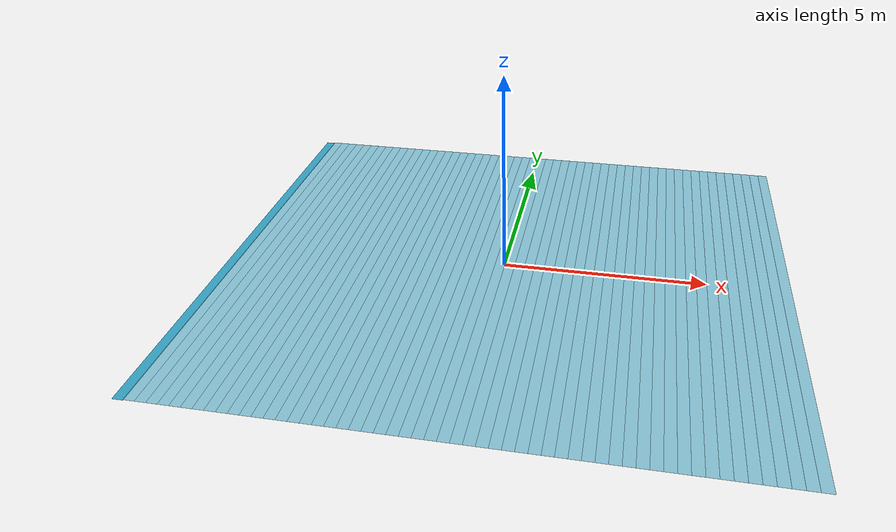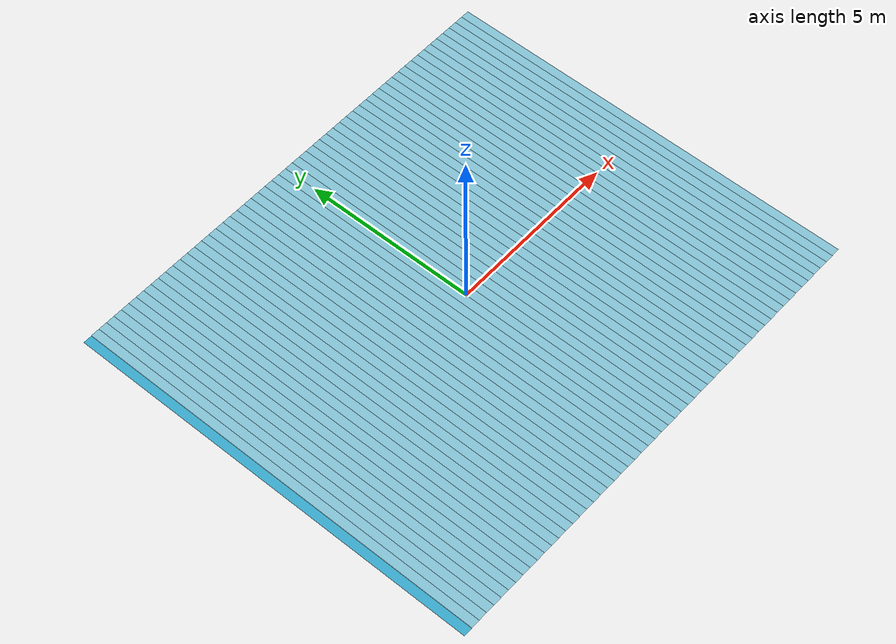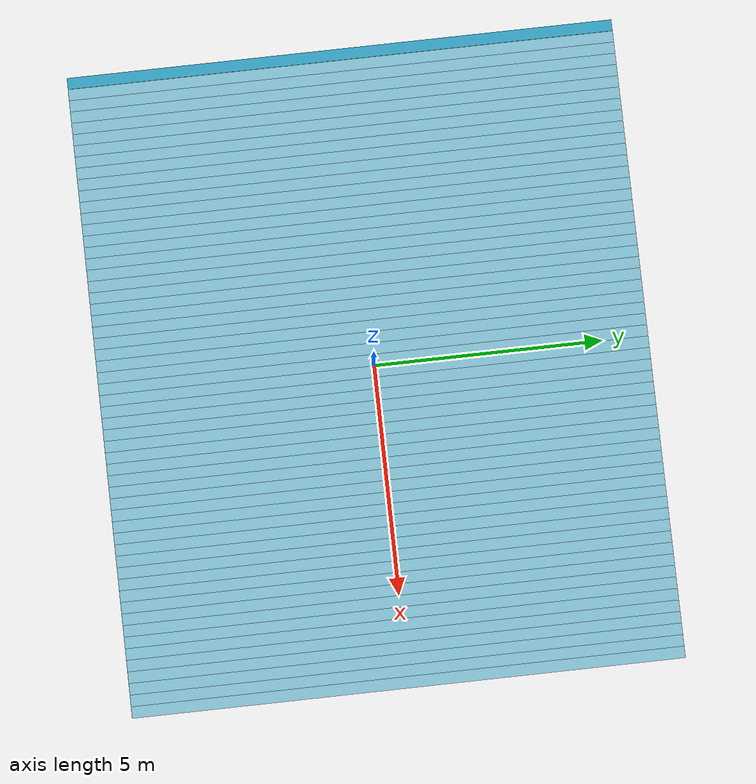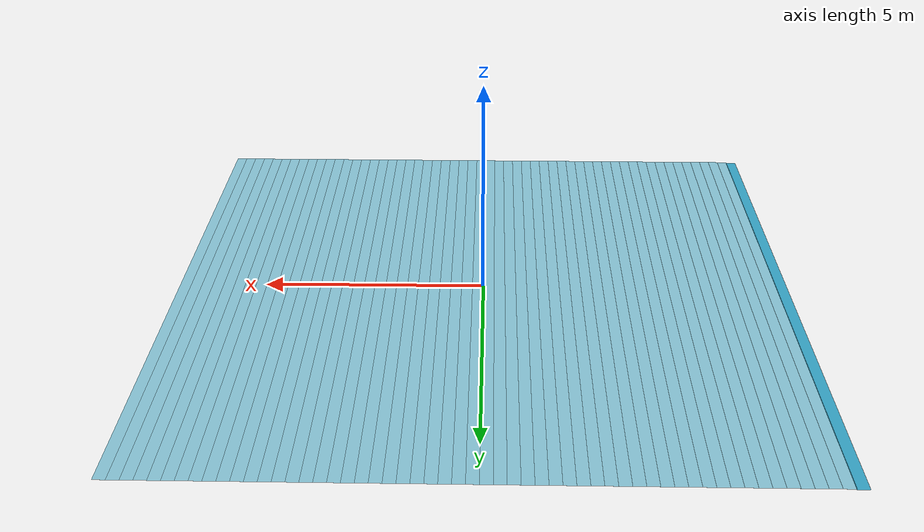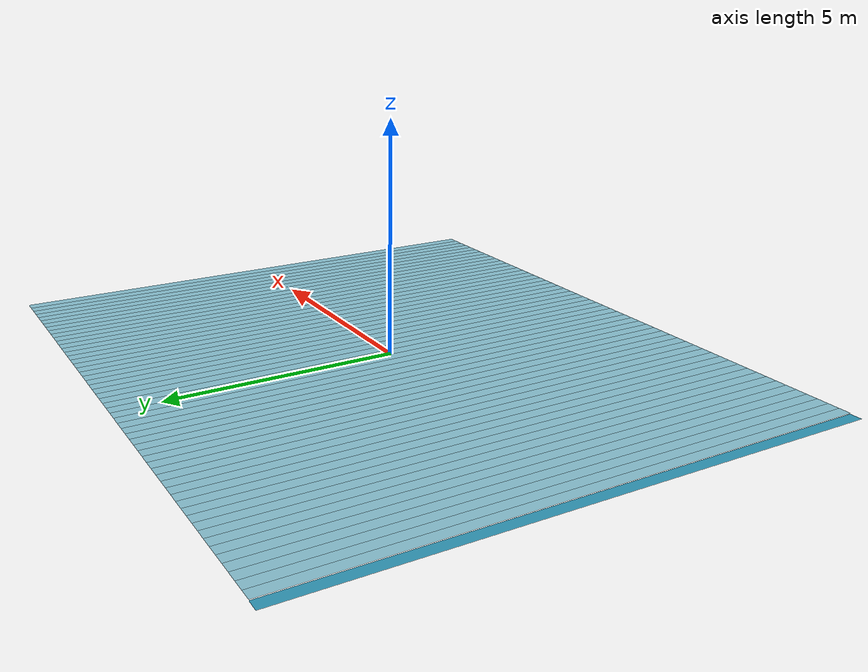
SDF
<sdf version="1.10">
 <world name="CompetitionWorld2025">
  <physics name="pool_physics" type="ignored">
   <max_step_size>0.003</max_step_size>
   <real_time_factor>1</real_time_factor>
  </physics>
  <spherical_coordinates>
   <surface_model>EARTH_WGS84</surface_model>
   <latitude_deg>31.312</latitude_deg>
   <longitude_deg>30.067222</longitude_deg>
   <elevation>0</elevation>
   <heading_deg>0</heading_deg>
  </spherical_coordinates>
  <plugin filename="gz-sim-physics-system" name="gz::sim::systems::Physics"/>
  <plugin filename="gz-sim-sensors-system" name="gz::sim::systems::Sensors">
   <render_engine>ogre2</render_engine>
  </plugin>
  <plugin filename="gz-sim-imu-system" name="gz::sim::systems::Imu"/>
  <plugin filename="gz-sim-user-commands-system" name="gz::sim::systems::UserCommands"/>
  <plugin filename="gz-sim-scene-broadcaster-system" name="gz::sim::systems::SceneBroadcaster"/>
  <plugin filename="gz-sim-buoyancy-system" name="gz::sim::systems::Buoyancy">
   <graded_buoyancy>
    <default_density>998</default_density>
    <density_change><above_depth>0</above_depth><density>1.225</density></density_change>
   </graded_buoyancy>
  </plugin>
  <plugin filename="libmako-pool-waves.so" name="mako::ResetBuoyancy"/>
  <scene>
   <ambient>0.45 0.45 0.48 1</ambient>
   <background>0.8 0.88 0.94 1</background>
   <shadows>true</shadows>
  </scene>
  <light name="pool_daylight" type="directional">
   <pose>0 0 6 0 0 0</pose>
   <direction>-0.3 0.2 -1</direction>
   <diffuse>0.85 0.85 0.85 1</diffuse>
   <specular>0.35 0.35 0.35 1</specular>
  </light>
  <light name="pool_fill" type="directional">
   <pose>0 0 6 0 0 0</pose>
   <direction>0.5 -0.4 -1</direction>
   <diffuse>0.25 0.28 0.3 1</diffuse>
   <specular>0.35 0.35 0.35 1</specular>
   <cast_shadows>false</cast_shadows>
  </light>
  <light name="pool_underwater_fill_west" type="point">
   <pose>-4 -3 -1.2 0 0 0</pose>
   <diffuse>0.35 0.4 0.45 1</diffuse>
   <specular>0.15 0.15 0.15 1</specular>
   <cast_shadows>false</cast_shadows>
   <attenuation>
    <range>16</range>
    <constant>1</constant>
    <linear>.05</linear>
    <quadratic>.02</quadratic>
   </attenuation>
  </light>
  <light name="pool_underwater_fill_east" type="point">
   <pose>4 3 -1.2 0 0 0</pose>
   <diffuse>0.35 0.4 0.45 1</diffuse>
   <specular>0.15 0.15 0.15 1</specular>
   <cast_shadows>false</cast_shadows>
   <attenuation>
    <range>16</range>
    <constant>1</constant>
    <linear>.05</linear>
    <quadratic>.02</quadratic>
   </attenuation>
  </light>
  <plugin filename="libmako-pool-waves.so" name="mako::PoolWaves">
   <amplitude>.018</amplitude>
   <wavelength>12</wavelength>
   <robot_model>mako</robot_model>
  </plugin>
  <model name="pool_ripple_00">
   <static>true</static>
   <pose>-6.875 0 0 0 0 0</pose>
   <link name="surface">
    <visual name="water">
     <cast_shadows>false</cast_shadows>
     <transparency>0.45</transparency>
     <geometry><plane><normal>0 0 1</normal><size>.251 12</size></plane></geometry>
     <material>
      <ambient>.12 .42 .52 1</ambient>
      <diffuse>.2 .62 .75 1</diffuse>
      <specular>.9 .95 1 1</specular>
      <pbr><metal><metalness>0</metalness><roughness>.16</roughness></metal></pbr>
     </material>
    </visual>
   </link>
  </model>
  <model name="pool_ripple_01">
   <static>true</static>
   <pose>-6.625 0 0 0 0 0</pose>
   <link name="surface">
    <visual name="water">
     <cast_shadows>false</cast_shadows>
     <transparency>0.45</transparency>
     <geometry><plane><normal>0 0 1</normal><size>.251 12</size></plane></geometry>
     <material>
      <ambient>.12 .42 .52 1</ambient>
      <diffuse>.2 .62 .75 1</diffuse>
      <specular>.9 .95 1 1</specular>
      <pbr><metal><metalness>0</metalness><roughness>.16</roughness></metal></pbr>
     </material>
    </visual>
   </link>
  </model>
  <model name="pool_ripple_02">
   <static>true</static>
   <pose>-6.375 0 0 0 0 0</pose>
   <link name="surface">
    <visual name="water">
     <cast_shadows>false</cast_shadows>
     <transparency>0.45</transparency>
     <geometry><plane><normal>0 0 1</normal><size>.251 12</size></plane></geometry>
     <material>
      <ambient>.12 .42 .52 1</ambient>
      <diffuse>.2 .62 .75 1</diffuse>
      <specular>.9 .95 1 1</specular>
      <pbr><metal><metalness>0</metalness><roughness>.16</roughness></metal></pbr>
     </material>
    </visual>
   </link>
  </model>
  <model name="pool_ripple_03">
   <static>true</static>
   <pose>-6.125 0 0 0 0 0</pose>
   <link name="surface">
    <visual name="water">
     <cast_shadows>false</cast_shadows>
     <transparency>0.45</transparency>
     <geometry><plane><normal>0 0 1</normal><size>.251 12</size></plane></geometry>
     <material>
      <ambient>.12 .42 .52 1</ambient>
      <diffuse>.2 .62 .75 1</diffuse>
      <specular>.9 .95 1 1</specular>
      <pbr><metal><metalness>0</metalness><roughness>.16</roughness></metal></pbr>
     </material>
    </visual>
   </link>
  </model>
  <model name="pool_ripple_04">
   <static>true</static>
   <pose>-5.875 0 0 0 0 0</pose>
   <link name="surface">
    <visual name="water">
     <cast_shadows>false</cast_shadows>
     <transparency>0.45</transparency>
     <geometry><plane><normal>0 0 1</normal><size>.251 12</size></plane></geometry>
     <material>
      <ambient>.12 .42 .52 1</ambient>
      <diffuse>.2 .62 .75 1</diffuse>
      <specular>.9 .95 1 1</specular>
      <pbr><metal><metalness>0</metalness><roughness>.16</roughness></metal></pbr>
     </material>
    </visual>
   </link>
  </model>
  <model name="pool_ripple_05">
   <static>true</static>
   <pose>-5.625 0 0 0 0 0</pose>
   <link name="surface">
    <visual name="water">
     <cast_shadows>false</cast_shadows>
     <transparency>0.45</transparency>
     <geometry><plane><normal>0 0 1</normal><size>.251 12</size></plane></geometry>
     <material>
      <ambient>.12 .42 .52 1</ambient>
      <diffuse>.2 .62 .75 1</diffuse>
      <specular>.9 .95 1 1</specular>
      <pbr><metal><metalness>0</metalness><roughness>.16</roughness></metal></pbr>
     </material>
    </visual>
   </link>
  </model>
  <model name="pool_ripple_06">
   <static>true</static>
   <pose>-5.375 0 0 0 0 0</pose>
   <link name="surface">
    <visual name="water">
     <cast_shadows>false</cast_shadows>
     <transparency>0.45</transparency>
     <geometry><plane><normal>0 0 1</normal><size>.251 12</size></plane></geometry>
     <material>
      <ambient>.12 .42 .52 1</ambient>
      <diffuse>.2 .62 .75 1</diffuse>
      <specular>.9 .95 1 1</specular>
      <pbr><metal><metalness>0</metalness><roughness>.16</roughness></metal></pbr>
     </material>
    </visual>
   </link>
  </model>
  <model name="pool_ripple_07">
   <static>true</static>
   <pose>-5.125 0 0 0 0 0</pose>
   <link name="surface">
    <visual name="water">
     <cast_shadows>false</cast_shadows>
     <transparency>0.45</transparency>
     <geometry><plane><normal>0 0 1</normal><size>.251 12</size></plane></geometry>
     <material>
      <ambient>.12 .42 .52 1</ambient>
      <diffuse>.2 .62 .75 1</diffuse>
      <specular>.9 .95 1 1</specular>
      <pbr><metal><metalness>0</metalness><roughness>.16</roughness></metal></pbr>
     </material>
    </visual>
   </link>
  </model>
  <model name="pool_ripple_08">
   <static>true</static>
   <pose>-4.875 0 0 0 0 0</pose>
   <link name="surface">
    <visual name="water">
     <cast_shadows>false</cast_shadows>
     <transparency>0.45</transparency>
     <geometry><plane><normal>0 0 1</normal><size>.251 12</size></plane></geometry>
     <material>
      <ambient>.12 .42 .52 1</ambient>
      <diffuse>.2 .62 .75 1</diffuse>
      <specular>.9 .95 1 1</specular>
      <pbr><metal><metalness>0</metalness><roughness>.16</roughness></metal></pbr>
     </material>
    </visual>
   </link>
  </model>
  <model name="pool_ripple_09">
   <static>true</static>
   <pose>-4.625 0 0 0 0 0</pose>
   <link name="surface">
    <visual name="water">
     <cast_shadows>false</cast_shadows>
     <transparency>0.45</transparency>
     <geometry><plane><normal>0 0 1</normal><size>.251 12</size></plane></geometry>
     <material>
      <ambient>.12 .42 .52 1</ambient>
      <diffuse>.2 .62 .75 1</diffuse>
      <specular>.9 .95 1 1</specular>
      <pbr><metal><metalness>0</metalness><roughness>.16</roughness></metal></pbr>
     </material>
    </visual>
   </link>
  </model>
  <model name="pool_ripple_10">
   <static>true</static>
   <pose>-4.375 0 0 0 0 0</pose>
   <link name="surface">
    <visual name="water">
     <cast_shadows>false</cast_shadows>
     <transparency>0.45</transparency>
     <geometry><plane><normal>0 0 1</normal><size>.251 12</size></plane></geometry>
     <material>
      <ambient>.12 .42 .52 1</ambient>
      <diffuse>.2 .62 .75 1</diffuse>
      <specular>.9 .95 1 1</specular>
      <pbr><metal><metalness>0</metalness><roughness>.16</roughness></metal></pbr>
     </material>
    </visual>
   </link>
  </model>
  <model name="pool_ripple_11">
   <static>true</static>
   <pose>-4.125 0 0 0 0 0</pose>
   <link name="surface">
    <visual name="water">
     <cast_shadows>false</cast_shadows>
     <transparency>0.45</transparency>
     <geometry><plane><normal>0 0 1</normal><size>.251 12</size></plane></geometry>
     <material>
      <ambient>.12 .42 .52 1</ambient>
      <diffuse>.2 .62 .75 1</diffuse>
      <specular>.9 .95 1 1</specular>
      <pbr><metal><metalness>0</metalness><roughness>.16</roughness></metal></pbr>
     </material>
    </visual>
   </link>
  </model>
  <model name="pool_ripple_12">
   <static>true</static>
   <pose>-3.875 0 0 0 0 0</pose>
   <link name="surface">
    <visual name="water">
     <cast_shadows>false</cast_shadows>
     <transparency>0.45</transparency>
     <geometry><plane><normal>0 0 1</normal><size>.251 12</size></plane></geometry>
     <material>
      <ambient>.12 .42 .52 1</ambient>
      <diffuse>.2 .62 .75 1</diffuse>
      <specular>.9 .95 1 1</specular>
      <pbr><metal><metalness>0</metalness><roughness>.16</roughness></metal></pbr>
     </material>
    </visual>
   </link>
  </model>
  <model name="pool_ripple_13">
   <static>true</static>
   <pose>-3.625 0 0 0 0 0</pose>
   <link name="surface">
    <visual name="water">
     <cast_shadows>false</cast_shadows>
     <transparency>0.45</transparency>
     <geometry><plane><normal>0 0 1</normal><size>.251 12</size></plane></geometry>
     <material>
      <ambient>.12 .42 .52 1</ambient>
      <diffuse>.2 .62 .75 1</diffuse>
      <specular>.9 .95 1 1</specular>
      <pbr><metal><metalness>0</metalness><roughness>.16</roughness></metal></pbr>
     </material>
    </visual>
   </link>
  </model>
  <model name="pool_ripple_14">
   <static>true</static>
   <pose>-3.375 0 0 0 0 0</pose>
   <link name="surface">
    <visual name="water">
     <cast_shadows>false</cast_shadows>
     <transparency>0.45</transparency>
     <geometry><plane><normal>0 0 1</normal><size>.251 12</size></plane></geometry>
     <material>
      <ambient>.12 .42 .52 1</ambient>
      <diffuse>.2 .62 .75 1</diffuse>
      <specular>.9 .95 1 1</specular>
      <pbr><metal><metalness>0</metalness><roughness>.16</roughness></metal></pbr>
     </material>
    </visual>
   </link>
  </model>
  <model name="pool_ripple_15">
   <static>true</static>
   <pose>-3.125 0 0 0 0 0</pose>
   <link name="surface">
    <visual name="water">
     <cast_shadows>false</cast_shadows>
     <transparency>0.45</transparency>
     <geometry><plane><normal>0 0 1</normal><size>.251 12</size></plane></geometry>
     <material>
      <ambient>.12 .42 .52 1</ambient>
      <diffuse>.2 .62 .75 1</diffuse>
      <specular>.9 .95 1 1</specular>
      <pbr><metal><metalness>0</metalness><roughness>.16</roughness></metal></pbr>
     </material>
    </visual>
   </link>
  </model>
  <model name="pool_ripple_16">
   <static>true</static>
   <pose>-2.875 0 0 0 0 0</pose>
   <link name="surface">
    <visual name="water">
     <cast_shadows>false</cast_shadows>
     <transparency>0.45</transparency>
     <geometry><plane><normal>0 0 1</normal><size>.251 12</size></plane></geometry>
     <material>
      <ambient>.12 .42 .52 1</ambient>
      <diffuse>.2 .62 .75 1</diffuse>
      <specular>.9 .95 1 1</specular>
      <pbr><metal><metalness>0</metalness><roughness>.16</roughness></metal></pbr>
     </material>
    </visual>
   </link>
  </model>
  <model name="pool_ripple_17">
   <static>true</static>
   <pose>-2.625 0 0 0 0 0</pose>
   <link name="surface">
    <visual name="water">
     <cast_shadows>false</cast_shadows>
     <transparency>0.45</transparency>
     <geometry><plane><normal>0 0 1</normal><size>.251 12</size></plane></geometry>
     <material>
      <ambient>.12 .42 .52 1</ambient>
      <diffuse>.2 .62 .75 1</diffuse>
      <specular>.9 .95 1 1</specular>
      <pbr><metal><metalness>0</metalness><roughness>.16</roughness></metal></pbr>
     </material>
    </visual>
   </link>
  </model>
  <model name="pool_ripple_18">
   <static>true</static>
   <pose>-2.375 0 0 0 0 0</pose>
   <link name="surface">
    <visual name="water">
     <cast_shadows>false</cast_shadows>
     <transparency>0.45</transparency>
     <geometry><plane><normal>0 0 1</normal><size>.251 12</size></plane></geometry>
     <material>
      <ambient>.12 .42 .52 1</ambient>
      <diffuse>.2 .62 .75 1</diffuse>
      <specular>.9 .95 1 1</specular>
      <pbr><metal><metalness>0</metalness><roughness>.16</roughness></metal></pbr>
     </material>
    </visual>
   </link>
  </model>
  <model name="pool_ripple_19">
   <static>true</static>
   <pose>-2.125 0 0 0 0 0</pose>
   <link name="surface">
    <visual name="water">
     <cast_shadows>false</cast_shadows>
     <transparency>0.45</transparency>
     <geometry><plane><normal>0 0 1</normal><size>.251 12</size></plane></geometry>
     <material>
      <ambient>.12 .42 .52 1</ambient>
      <diffuse>.2 .62 .75 1</diffuse>
      <specular>.9 .95 1 1</specular>
      <pbr><metal><metalness>0</metalness><roughness>.16</roughness></metal></pbr>
     </material>
    </visual>
   </link>
  </model>
  <model name="pool_ripple_20">
   <static>true</static>
   <pose>-1.875 0 0 0 0 0</pose>
   <link name="surface">
    <visual name="water">
     <cast_shadows>false</cast_shadows>
     <transparency>0.45</transparency>
     <geometry><plane><normal>0 0 1</normal><size>.251 12</size></plane></geometry>
     <material>
      <ambient>.12 .42 .52 1</ambient>
      <diffuse>.2 .62 .75 1</diffuse>
      <specular>.9 .95 1 1</specular>
      <pbr><metal><metalness>0</metalness><roughness>.16</roughness></metal></pbr>
     </material>
    </visual>
   </link>
  </model>
  <model name="pool_ripple_21">
   <static>true</static>
   <pose>-1.625 0 0 0 0 0</pose>
   <link name="surface">
    <visual name="water">
     <cast_shadows>false</cast_shadows>
     <transparency>0.45</transparency>
     <geometry><plane><normal>0 0 1</normal><size>.251 12</size></plane></geometry>
     <material>
      <ambient>.12 .42 .52 1</ambient>
      <diffuse>.2 .62 .75 1</diffuse>
      <specular>.9 .95 1 1</specular>
      <pbr><metal><metalness>0</metalness><roughness>.16</roughness></metal></pbr>
     </material>
    </visual>
   </link>
  </model>
  <model name="pool_ripple_22">
   <static>true</static>
   <pose>-1.375 0 0 0 0 0</pose>
   <link name="surface">
    <visual name="water">
     <cast_shadows>false</cast_shadows>
     <transparency>0.45</transparency>
     <geometry><plane><normal>0 0 1</normal><size>.251 12</size></plane></geometry>
     <material>
      <ambient>.12 .42 .52 1</ambient>
      <diffuse>.2 .62 .75 1</diffuse>
      <specular>.9 .95 1 1</specular>
      <pbr><metal><metalness>0</metalness><roughness>.16</roughness></metal></pbr>
     </material>
    </visual>
   </link>
  </model>
  <model name="pool_ripple_23">
   <static>true</static>
   <pose>-1.125 0 0 0 0 0</pose>
   <link name="surface">
    <visual name="water">
     <cast_shadows>false</cast_shadows>
     <transparency>0.45</transparency>
     <geometry><plane><normal>0 0 1</normal><size>.251 12</size></plane></geometry>
     <material>
      <ambient>.12 .42 .52 1</ambient>
      <diffuse>.2 .62 .75 1</diffuse>
      <specular>.9 .95 1 1</specular>
      <pbr><metal><metalness>0</metalness><roughness>.16</roughness></metal></pbr>
     </material>
    </visual>
   </link>
  </model>
  <model name="pool_ripple_24">
   <static>true</static>
   <pose>-0.875 0 0 0 0 0</pose>
   <link name="surface">
    <visual name="water">
     <cast_shadows>false</cast_shadows>
     <transparency>0.45</transparency>
     <geometry><plane><normal>0 0 1</normal><size>.251 12</size></plane></geometry>
     <material>
      <ambient>.12 .42 .52 1</ambient>
      <diffuse>.2 .62 .75 1</diffuse>
      <specular>.9 .95 1 1</specular>
      <pbr><metal><metalness>0</metalness><roughness>.16</roughness></metal></pbr>
     </material>
    </visual>
   </link>
  </model>
  <model name="pool_ripple_25">
   <static>true</static>
   <pose>-0.625 0 0 0 0 0</pose>
   <link name="surface">
    <visual name="water">
     <cast_shadows>false</cast_shadows>
     <transparency>0.45</transparency>
     <geometry><plane><normal>0 0 1</normal><size>.251 12</size></plane></geometry>
     <material>
      <ambient>.12 .42 .52 1</ambient>
      <diffuse>.2 .62 .75 1</diffuse>
      <specular>.9 .95 1 1</specular>
      <pbr><metal><metalness>0</metalness><roughness>.16</roughness></metal></pbr>
     </material>
    </visual>
   </link>
  </model>
  <model name="pool_ripple_26">
   <static>true</static>
   <pose>-0.375 0 0 0 0 0</pose>
   <link name="surface">
    <visual name="water">
     <cast_shadows>false</cast_shadows>
     <transparency>0.45</transparency>
     <geometry><plane><normal>0 0 1</normal><size>.251 12</size></plane></geometry>
     <material>
      <ambient>.12 .42 .52 1</ambient>
      <diffuse>.2 .62 .75 1</diffuse>
      <specular>.9 .95 1 1</specular>
      <pbr><metal><metalness>0</metalness><roughness>.16</roughness></metal></pbr>
     </material>
    </visual>
   </link>
  </model>
  <model name="pool_ripple_27">
   <static>true</static>
   <pose>-0.125 0 0 0 0 0</pose>
   <link name="surface">
    <visual name="water">
     <cast_shadows>false</cast_shadows>
     <transparency>0.45</transparency>
     <geometry><plane><normal>0 0 1</normal><size>.251 12</size></plane></geometry>
     <material>
      <ambient>.12 .42 .52 1</ambient>
      <diffuse>.2 .62 .75 1</diffuse>
      <specular>.9 .95 1 1</specular>
      <pbr><metal><metalness>0</metalness><roughness>.16</roughness></metal></pbr>
     </material>
    </visual>
   </link>
  </model>
  <model name="pool_ripple_28">
   <static>true</static>
   <pose>0.125 0 0 0 0 0</pose>
   <link name="surface">
    <visual name="water">
     <cast_shadows>false</cast_shadows>
     <transparency>0.45</transparency>
     <geometry><plane><normal>0 0 1</normal><size>.251 12</size></plane></geometry>
     <material>
      <ambient>.12 .42 .52 1</ambient>
      <diffuse>.2 .62 .75 1</diffuse>
      <specular>.9 .95 1 1</specular>
      <pbr><metal><metalness>0</metalness><roughness>.16</roughness></metal></pbr>
     </material>
    </visual>
   </link>
  </model>
  <model name="pool_ripple_29">
   <static>true</static>
   <pose>0.375 0 0 0 0 0</pose>
   <link name="surface">
    <visual name="water">
     <cast_shadows>false</cast_shadows>
     <transparency>0.45</transparency>
     <geometry><plane><normal>0 0 1</normal><size>.251 12</size></plane></geometry>
     <material>
      <ambient>.12 .42 .52 1</ambient>
      <diffuse>.2 .62 .75 1</diffuse>
      <specular>.9 .95 1 1</specular>
      <pbr><metal><metalness>0</metalness><roughness>.16</roughness></metal></pbr>
     </material>
    </visual>
   </link>
  </model>
  <model name="pool_ripple_30">
   <static>true</static>
   <pose>0.625 0 0 0 0 0</pose>
   <link name="surface">
    <visual name="water">
     <cast_shadows>false</cast_shadows>
     <transparency>0.45</transparency>
     <geometry><plane><normal>0 0 1</normal><size>.251 12</size></plane></geometry>
     <material>
      <ambient>.12 .42 .52 1</ambient>
      <diffuse>.2 .62 .75 1</diffuse>
      <specular>.9 .95 1 1</specular>
      <pbr><metal><metalness>0</metalness><roughness>.16</roughness></metal></pbr>
     </material>
    </visual>
   </link>
  </model>
  <model name="pool_ripple_31">
   <static>true</static>
   <pose>0.875 0 0 0 0 0</pose>
   <link name="surface">
    <visual name="water">
     <cast_shadows>false</cast_shadows>
     <transparency>0.45</transparency>
     <geometry><plane><normal>0 0 1</normal><size>.251 12</size></plane></geometry>
     <material>
      <ambient>.12 .42 .52 1</ambient>
      <diffuse>.2 .62 .75 1</diffuse>
      <specular>.9 .95 1 1</specular>
      <pbr><metal><metalness>0</metalness><roughness>.16</roughness></metal></pbr>
     </material>
    </visual>
   </link>
  </model>
  <model name="pool_ripple_32">
   <static>true</static>
   <pose>1.125 0 0 0 0 0</pose>
   <link name="surface">
    <visual name="water">
     <cast_shadows>false</cast_shadows>
     <transparency>0.45</transparency>
     <geometry><plane><normal>0 0 1</normal><size>.251 12</size></plane></geometry>
     <material>
      <ambient>.12 .42 .52 1</ambient>
      <diffuse>.2 .62 .75 1</diffuse>
      <specular>.9 .95 1 1</specular>
      <pbr><metal><metalness>0</metalness><roughness>.16</roughness></metal></pbr>
     </material>
    </visual>
   </link>
  </model>
  <model name="pool_ripple_33">
   <static>true</static>
   <pose>1.375 0 0 0 0 0</pose>
   <link name="surface">
    <visual name="water">
     <cast_shadows>false</cast_shadows>
     <transparency>0.45</transparency>
     <geometry><plane><normal>0 0 1</normal><size>.251 12</size></plane></geometry>
     <material>
      <ambient>.12 .42 .52 1</ambient>
      <diffuse>.2 .62 .75 1</diffuse>
      <specular>.9 .95 1 1</specular>
      <pbr><metal><metalness>0</metalness><roughness>.16</roughness></metal></pbr>
     </material>
    </visual>
   </link>
  </model>
  <model name="pool_ripple_34">
   <static>true</static>
   <pose>1.625 0 0 0 0 0</pose>
   <link name="surface">
    <visual name="water">
     <cast_shadows>false</cast_shadows>
     <transparency>0.45</transparency>
     <geometry><plane><normal>0 0 1</normal><size>.251 12</size></plane></geometry>
     <material>
      <ambient>.12 .42 .52 1</ambient>
      <diffuse>.2 .62 .75 1</diffuse>
      <specular>.9 .95 1 1</specular>
      <pbr><metal><metalness>0</metalness><roughness>.16</roughness></metal></pbr>
     </material>
    </visual>
   </link>
  </model>
  <model name="pool_ripple_35">
   <static>true</static>
   <pose>1.875 0 0 0 0 0</pose>
   <link name="surface">
    <visual name="water">
     <cast_shadows>false</cast_shadows>
     <transparency>0.45</transparency>
     <geometry><plane><normal>0 0 1</normal><size>.251 12</size></plane></geometry>
     <material>
      <ambient>.12 .42 .52 1</ambient>
      <diffuse>.2 .62 .75 1</diffuse>
      <specular>.9 .95 1 1</specular>
      <pbr><metal><metalness>0</metalness><roughness>.16</roughness></metal></pbr>
     </material>
    </visual>
   </link>
  </model>
  <model name="pool_ripple_36">
   <static>true</static>
   <pose>2.125 0 0 0 0 0</pose>
   <link name="surface">
    <visual name="water">
     <cast_shadows>false</cast_shadows>
     <transparency>0.45</transparency>
     <geometry><plane><normal>0 0 1</normal><size>.251 12</size></plane></geometry>
     <material>
      <ambient>.12 .42 .52 1</ambient>
      <diffuse>.2 .62 .75 1</diffuse>
      <specular>.9 .95 1 1</specular>
      <pbr><metal><metalness>0</metalness><roughness>.16</roughness></metal></pbr>
     </material>
    </visual>
   </link>
  </model>
  <model name="pool_ripple_37">
   <static>true</static>
   <pose>2.375 0 0 0 0 0</pose>
   <link name="surface">
    <visual name="water">
     <cast_shadows>false</cast_shadows>
     <transparency>0.45</transparency>
     <geometry><plane><normal>0 0 1</normal><size>.251 12</size></plane></geometry>
     <material>
      <ambient>.12 .42 .52 1</ambient>
      <diffuse>.2 .62 .75 1</diffuse>
      <specular>.9 .95 1 1</specular>
      <pbr><metal><metalness>0</metalness><roughness>.16</roughness></metal></pbr>
     </material>
    </visual>
   </link>
  </model>
  <model name="pool_ripple_38">
   <static>true</static>
   <pose>2.625 0 0 0 0 0</pose>
   <link name="surface">
    <visual name="water">
     <cast_shadows>false</cast_shadows>
     <transparency>0.45</transparency>
     <geometry><plane><normal>0 0 1</normal><size>.251 12</size></plane></geometry>
     <material>
      <ambient>.12 .42 .52 1</ambient>
      <diffuse>.2 .62 .75 1</diffuse>
      <specular>.9 .95 1 1</specular>
      <pbr><metal><metalness>0</metalness><roughness>.16</roughness></metal></pbr>
     </material>
    </visual>
   </link>
  </model>
  <model name="pool_ripple_39">
   <static>true</static>
   <pose>2.875 0 0 0 0 0</pose>
   <link name="surface">
    <visual name="water">
     <cast_shadows>false</cast_shadows>
     <transparency>0.45</transparency>
     <geometry><plane><normal>0 0 1</normal><size>.251 12</size></plane></geometry>
     <material>
      <ambient>.12 .42 .52 1</ambient>
      <diffuse>.2 .62 .75 1</diffuse>
      <specular>.9 .95 1 1</specular>
      <pbr><metal><metalness>0</metalness><roughness>.16</roughness></metal></pbr>
     </material>
    </visual>
   </link>
  </model>
  <model name="pool_ripple_40">
   <static>true</static>
   <pose>3.125 0 0 0 0 0</pose>
   <link name="surface">
    <visual name="water">
     <cast_shadows>false</cast_shadows>
     <transparency>0.45</transparency>
     <geometry><plane><normal>0 0 1</normal><size>.251 12</size></plane></geometry>
     <material>
      <ambient>.12 .42 .52 1</ambient>
      <diffuse>.2 .62 .75 1</diffuse>
      <specular>.9 .95 1 1</specular>
      <pbr><metal><metalness>0</metalness><roughness>.16</roughness></metal></pbr>
     </material>
    </visual>
   </link>
  </model>
  <model name="pool_ripple_41">
   <static>true</static>
   <pose>3.375 0 0 0 0 0</pose>
   <link name="surface">
    <visual name="water">
     <cast_shadows>false</cast_shadows>
     <transparency>0.45</transparency>
     <geometry><plane><normal>0 0 1</normal><size>.251 12</size></plane></geometry>
     <material>
      <ambient>.12 .42 .52 1</ambient>
      <diffuse>.2 .62 .75 1</diffuse>
      <specular>.9 .95 1 1</specular>
      <pbr><metal><metalness>0</metalness><roughness>.16</roughness></metal></pbr>
     </material>
    </visual>
   </link>
  </model>
  <model name="pool_ripple_42">
   <static>true</static>
   <pose>3.625 0 0 0 0 0</pose>
   <link name="surface">
    <visual name="water">
     <cast_shadows>false</cast_shadows>
     <transparency>0.45</transparency>
     <geometry><plane><normal>0 0 1</normal><size>.251 12</size></plane></geometry>
     <material>
      <ambient>.12 .42 .52 1</ambient>
      <diffuse>.2 .62 .75 1</diffuse>
      <specular>.9 .95 1 1</specular>
      <pbr><metal><metalness>0</metalness><roughness>.16</roughness></metal></pbr>
     </material>
    </visual>
   </link>
  </model>
  <model name="pool_ripple_43">
   <static>true</static>
   <pose>3.875 0 0 0 0 0</pose>
   <link name="surface">
    <visual name="water">
     <cast_shadows>false</cast_shadows>
     <transparency>0.45</transparency>
     <geometry><plane><normal>0 0 1</normal><size>.251 12</size></plane></geometry>
     <material>
      <ambient>.12 .42 .52 1</ambient>
      <diffuse>.2 .62 .75 1</diffuse>
      <specular>.9 .95 1 1</specular>
      <pbr><metal><metalness>0</metalness><roughness>.16</roughness></metal></pbr>
     </material>
    </visual>
   </link>
  </model>
  <model name="pool_ripple_44">
   <static>true</static>
   <pose>4.125 0 0 0 0 0</pose>
   <link name="surface">
    <visual name="water">
     <cast_shadows>false</cast_shadows>
     <transparency>0.45</transparency>
     <geometry><plane><normal>0 0 1</normal><size>.251 12</size></plane></geometry>
     <material>
      <ambient>.12 .42 .52 1</ambient>
      <diffuse>.2 .62 .75 1</diffuse>
      <specular>.9 .95 1 1</specular>
      <pbr><metal><metalness>0</metalness><roughness>.16</roughness></metal></pbr>
     </material>
    </visual>
   </link>
  </model>
  <model name="pool_ripple_45">
   <static>true</static>
   <pose>4.375 0 0 0 0 0</pose>
   <link name="surface">
    <visual name="water">
     <cast_shadows>false</cast_shadows>
     <transparency>0.45</transparency>
     <geometry><plane><normal>0 0 1</normal><size>.251 12</size></plane></geometry>
     <material>
      <ambient>.12 .42 .52 1</ambient>
      <diffuse>.2 .62 .75 1</diffuse>
      <specular>.9 .95 1 1</specular>
      <pbr><metal><metalness>0</metalness><roughness>.16</roughness></metal></pbr>
     </material>
    </visual>
   </link>
  </model>
  <model name="pool_ripple_46">
   <static>true</static>
   <pose>4.625 0 0 0 0 0</pose>
   <link name="surface">
    <visual name="water">
     <cast_shadows>false</cast_shadows>
     <transparency>0.45</transparency>
     <geometry><plane><normal>0 0 1</normal><size>.251 12</size></plane></geometry>
     <material>
      <ambient>.12 .42 .52 1</ambient>
      <diffuse>.2 .62 .75 1</diffuse>
      <specular>.9 .95 1 1</specular>
      <pbr><metal><metalness>0</metalness><roughness>.16</roughness></metal></pbr>
     </material>
    </visual>
   </link>
  </model>
  <model name="pool_ripple_47">
   <static>true</static>
   <pose>4.875 0 0 0 0 0</pose>
   <link name="surface">
    <visual name="water">
     <cast_shadows>false</cast_shadows>
     <transparency>0.45</transparency>
     <geometry><plane><normal>0 0 1</normal><size>.251 12</size></plane></geometry>
     <material>
      <ambient>.12 .42 .52 1</ambient>
      <diffuse>.2 .62 .75 1</diffuse>
      <specular>.9 .95 1 1</specular>
      <pbr><metal><metalness>0</metalness><roughness>.16</roughness></metal></pbr>
     </material>
    </visual>
   </link>
  </model>
  <model name="pool_ripple_48">
   <static>true</static>
   <pose>5.125 0 0 0 0 0</pose>
   <link name="surface">
    <visual name="water">
     <cast_shadows>false</cast_shadows>
     <transparency>0.45</transparency>
     <geometry><plane><normal>0 0 1</normal><size>.251 12</size></plane></geometry>
     <material>
      <ambient>.12 .42 .52 1</ambient>
      <diffuse>.2 .62 .75 1</diffuse>
      <specular>.9 .95 1 1</specular>
      <pbr><metal><metalness>0</metalness><roughness>.16</roughness></metal></pbr>
     </material>
    </visual>
   </link>
  </model>
  <model name="pool_ripple_49">
   <static>true</static>
   <pose>5.375 0 0 0 0 0</pose>
   <link name="surface">
    <visual name="water">
     <cast_shadows>false</cast_shadows>
     <transparency>0.45</transparency>
     <geometry><plane><normal>0 0 1</normal><size>.251 12</size></plane></geometry>
     <material>
      <ambient>.12 .42 .52 1</ambient>
      <diffuse>.2 .62 .75 1</diffuse>
      <specular>.9 .95 1 1</specular>
      <pbr><metal><metalness>0</metalness><roughness>.16</roughness></metal></pbr>
     </material>
    </visual>
   </link>
  </model>
  <model name="pool_ripple_50">
   <static>true</static>
   <pose>5.625 0 0 0 0 0</pose>
   <link name="surface">
    <visual name="water">
     <cast_shadows>false</cast_shadows>
     <transparency>0.45</transparency>
     <geometry><plane><normal>0 0 1</normal><size>.251 12</size></plane></geometry>
     <material>
      <ambient>.12 .42 .52 1</ambient>
      <diffuse>.2 .62 .75 1</diffuse>
      <specular>.9 .95 1 1</specular>
      <pbr><metal><metalness>0</metalness><roughness>.16</roughness></metal></pbr>
     </material>
    </visual>
   </link>
  </model>
  <model name="pool_ripple_51">
   <static>true</static>
   <pose>5.875 0 0 0 0 0</pose>
   <link name="surface">
    <visual name="water">
     <cast_shadows>false</cast_shadows>
     <transparency>0.45</transparency>
     <geometry><plane><normal>0 0 1</normal><size>.251 12</size></plane></geometry>
     <material>
      <ambient>.12 .42 .52 1</ambient>
      <diffuse>.2 .62 .75 1</diffuse>
      <specular>.9 .95 1 1</specular>
      <pbr><metal><metalness>0</metalness><roughness>.16</roughness></metal></pbr>
     </material>
    </visual>
   </link>
  </model>
  <model name="pool_ripple_52">
   <static>true</static>
   <pose>6.125 0 0 0 0 0</pose>
   <link name="surface">
    <visual name="water">
     <cast_shadows>false</cast_shadows>
     <transparency>0.45</transparency>
     <geometry><plane><normal>0 0 1</normal><size>.251 12</size></plane></geometry>
     <material>
      <ambient>.12 .42 .52 1</ambient>
      <diffuse>.2 .62 .75 1</diffuse>
      <specular>.9 .95 1 1</specular>
      <pbr><metal><metalness>0</metalness><roughness>.16</roughness></metal></pbr>
     </material>
    </visual>
   </link>
  </model>
  <model name="pool_ripple_53">
   <static>true</static>
   <pose>6.375 0 0 0 0 0</pose>
   <link name="surface">
    <visual name="water">
     <cast_shadows>false</cast_shadows>
     <transparency>0.45</transparency>
     <geometry><plane><normal>0 0 1</normal><size>.251 12</size></plane></geometry>
     <material>
      <ambient>.12 .42 .52 1</ambient>
      <diffuse>.2 .62 .75 1</diffuse>
      <specular>.9 .95 1 1</specular>
      <pbr><metal><metalness>0</metalness><roughness>.16</roughness></metal></pbr>
     </material>
    </visual>
   </link>
  </model>
  <model name="pool_ripple_54">
   <static>true</static>
   <pose>6.625 0 0 0 0 0</pose>
   <link name="surface">
    <visual name="water">
     <cast_shadows>false</cast_shadows>
     <transparency>0.45</transparency>
     <geometry><plane><normal>0 0 1</normal><size>.251 12</size></plane></geometry>
     <material>
      <ambient>.12 .42 .52 1</ambient>
      <diffuse>.2 .62 .75 1</diffuse>
      <specular>.9 .95 1 1</specular>
      <pbr><metal><metalness>0</metalness><roughness>.16</roughness></metal></pbr>
     </material>
    </visual>
   </link>
  </model>
  <model name="pool_ripple_55">
   <static>true</static>
   <pose>6.875 0 0 0 0 0</pose>
   <link name="surface">
    <visual name="water">
     <cast_shadows>false</cast_shadows>
     <transparency>0.45</transparency>
     <geometry><plane><normal>0 0 1</normal><size>.251 12</size></plane></geometry>
     <material>
      <ambient>.12 .42 .52 1</ambient>
      <diffuse>.2 .62 .75 1</diffuse>
      <specular>.9 .95 1 1</specular>
      <pbr><metal><metalness>0</metalness><roughness>.16</roughness></metal></pbr>
     </material>
    </visual>
   </link>
  </model>
 </world>
</sdf>
